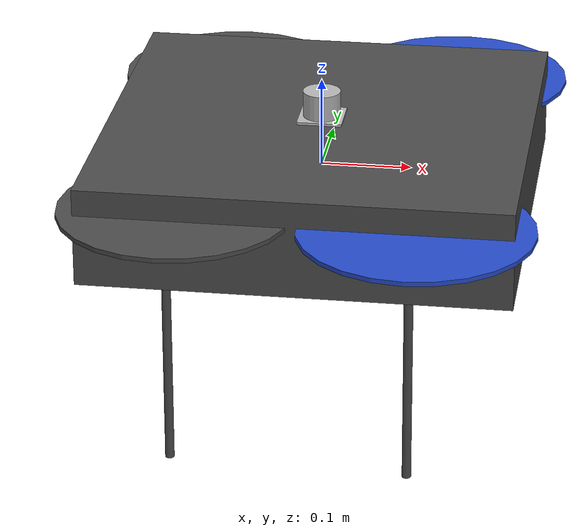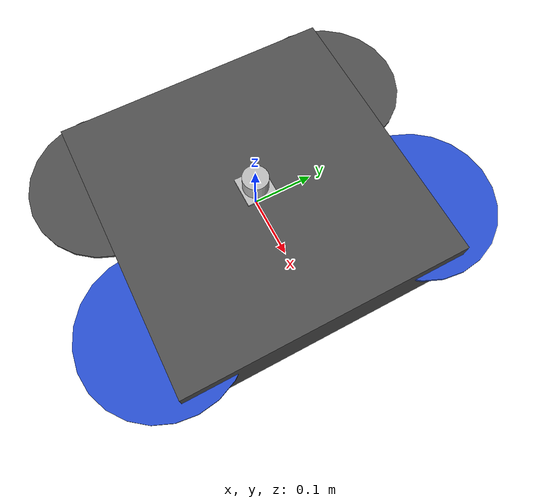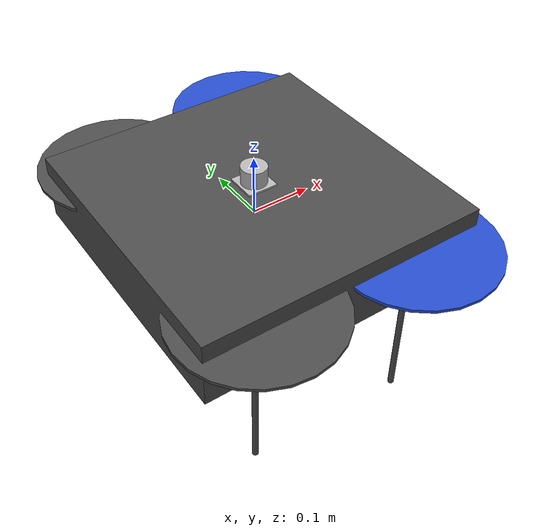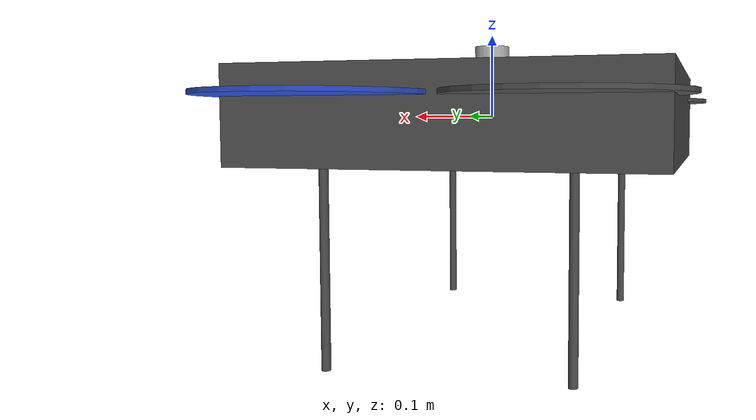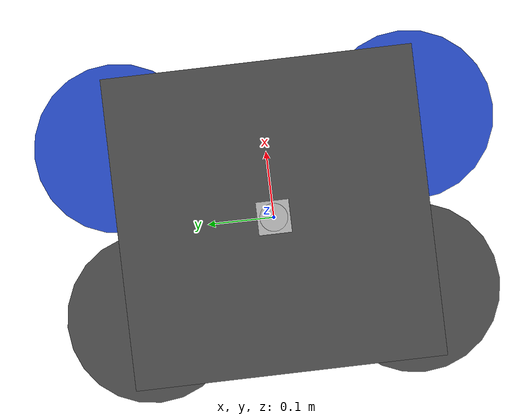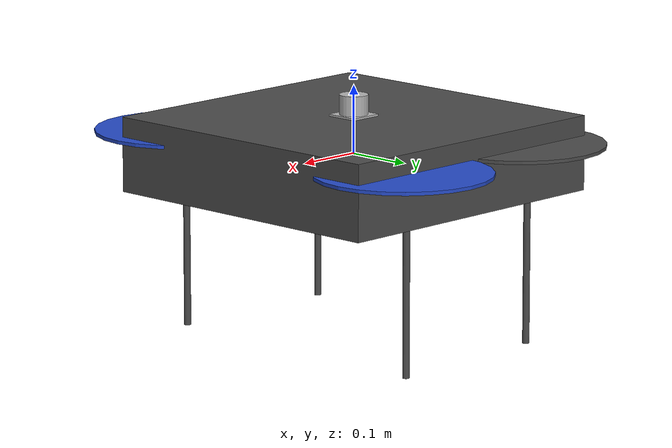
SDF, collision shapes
<?xml version="1.0" ?>
<sdf version="1.5">
  <model name='iris_d435_lidar'>
    <include>
      <uri>model://iris</uri>
    </include>

    <include>
      <uri>model://d435i</uri>
      <pose>0.12 0 0 0 0 0</pose>
    </include>
    <joint name="realsense_camera_joint" type="fixed">
      <child>d435i::camera_link</child>
      <parent>iris::base_link</parent>
      <axis>
        <xyz>0 0 1</xyz>
        <limit>
          <upper>0</upper>
          <lower>0</lower>
        </limit>
      </axis>
    </joint>

  <!-- 2D Lidar based on Hokuyo Lidar -->
    <include>
        <uri>model://2d_lidar</uri>
        <pose>0 0 0.052 0 0 0</pose>
      </include>
    <joint name="lidar_joint" type="fixed">
      <child>2d_lidar::link</child>
      <parent>iris::base_link</parent>
      <axis>
        <xyz>0 0 1</xyz>
        <limit>
          <upper>0</upper>
          <lower>0</lower>
        </limit>
      </axis>
    </joint>

  </model>
</sdf>
